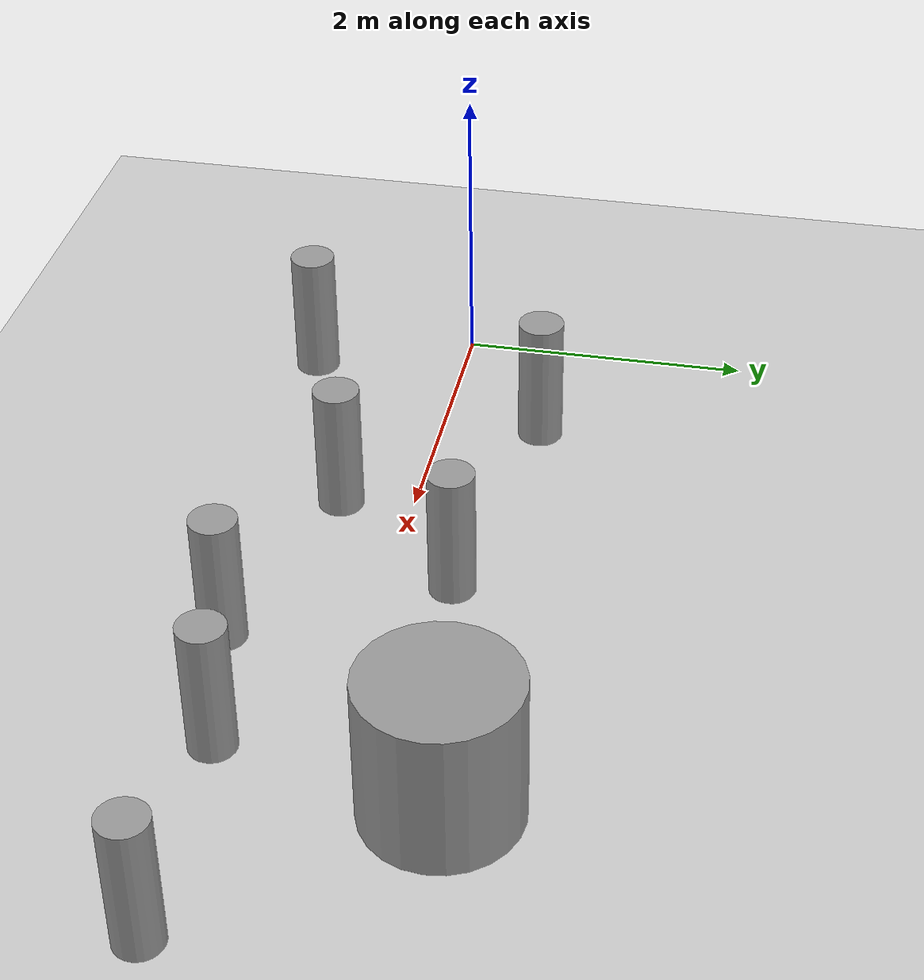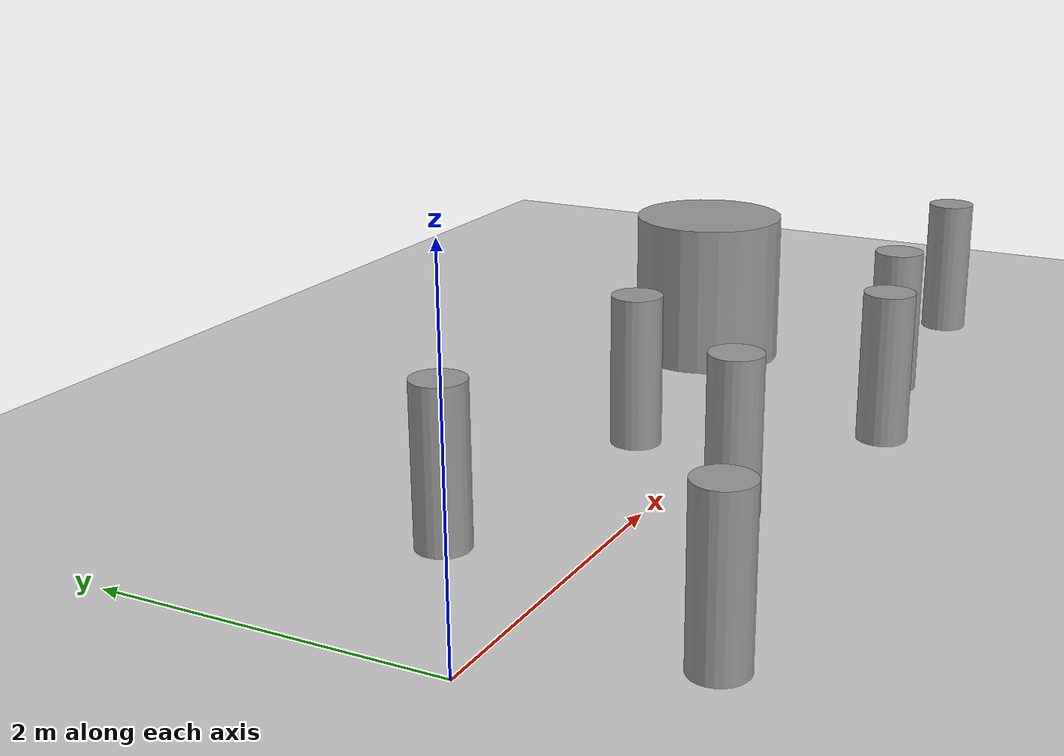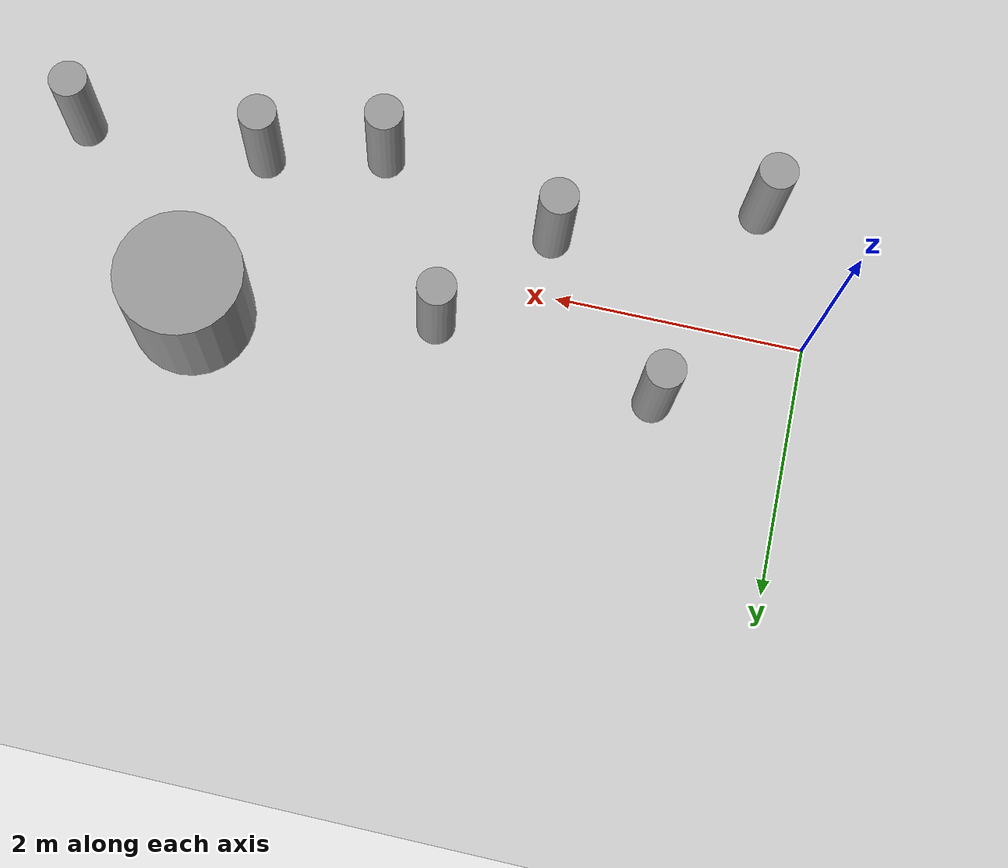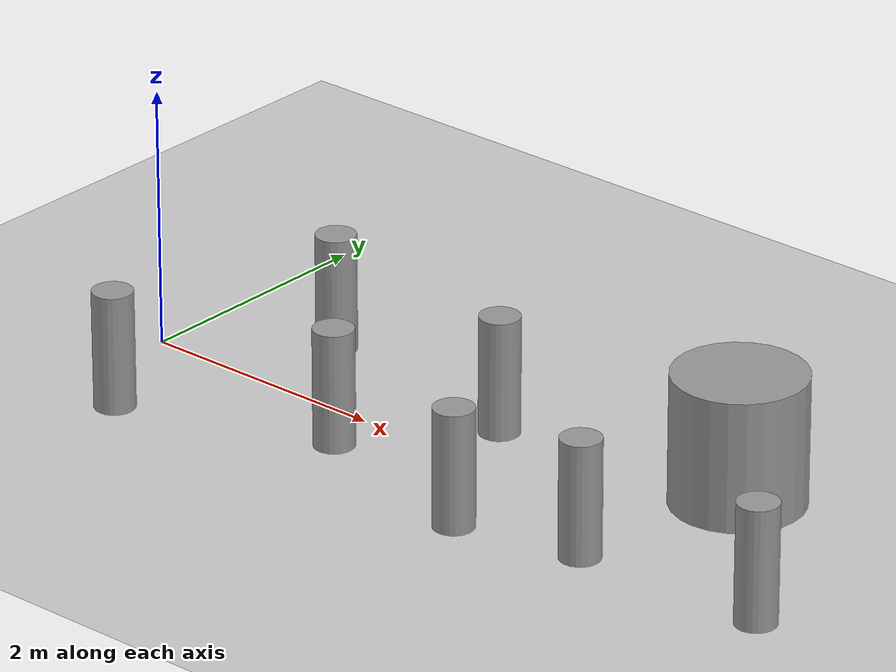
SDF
<sdf version="1.6">
 <world name="default">
  <light name="sun" type="directional">
   <pose>0 0 10 0 -0 0</pose>
   <diffuse>0.8 0.8 0.8 1</diffuse>
   <specular>0.2 0.2 0.2 1</specular>
   <attenuation>
    <range>1000</range>
    <constant>0.9</constant>
    <linear>0.01</linear>
    <quadratic>0.001</quadratic>
   </attenuation>
   <direction>-0.5 0.1 -0.9</direction>
  </light>
  <model name="ground_plane">
   <static>1</static>
   <link name="link">
    <collision name="collision">
     <geometry><plane><normal>0 0 1</normal><size>100 100</size></plane></geometry>
     <surface><friction><ode><mu>100</mu><mu2>50</mu2></ode></friction></surface>
    </collision>
    <visual name="visual">
     <cast_shadows>0</cast_shadows>
     <geometry><plane><normal>0 0 1</normal><size>100 100</size></plane></geometry>
     <material>
      <script><uri>file://media/materials/scripts/gazebo.material</uri><name>Gazebo/Grey</name></script>
     </material>
    </visual>
   </link>
  </model>
  <gravity>0 0 -9.8</gravity>
  <magnetic_field>6e-06 2.3e-05 -4.2e-05</magnetic_field>
  <atmosphere type="adiabatic"/>
  <physics name="default_physics" default="0" type="ode">
   <max_step_size>0.001</max_step_size>
   <real_time_factor>1</real_time_factor>
   <real_time_update_rate>1000</real_time_update_rate>
  </physics>
  <scene><ambient>0.4 0.4 0.4 1</ambient><background>0.7 0.7 0.7 1</background><shadows>1</shadows></scene>
  <audio><device>default</device></audio>
  <spherical_coordinates>
   <surface_model>EARTH_WGS84</surface_model>
   <latitude_deg>0</latitude_deg>
   <longitude_deg>0</longitude_deg>
   <elevation>0</elevation>
   <heading_deg>0</heading_deg>
  </spherical_coordinates>
  <model name="Untitled">
   <link name="link_0">
    <inertial>
     <mass>0.0878339</mass>
     <inertia>
      <ixx>0.00674063</ixx>
      <ixy>0</ixy>
      <ixz>0</ixz>
      <iyy>0.00674063</iyy>
      <iyz>0</iyz>
      <izz>0.00104639</izz>
     </inertia>
    </inertial>
    <visual name="visual">
     <geometry><cylinder><radius>0.154359</radius><length>0.921648</length></cylinder></geometry>
     <material>
      <lighting>1</lighting>
      <script><uri>file://media/materials/scripts/gazebo.material</uri><name>Gazebo/Grey</name></script>
     </material>
    </visual>
    <collision name="collision">
     <geometry><cylinder><radius>0.154359</radius><length>0.921648</length></cylinder></geometry>
     <surface>
      <friction>
       <ode><mu>1</mu><mu2>1</mu2><fdir1>0 0 0</fdir1><slip1>0</slip1><slip2>0</slip2></ode>
       <torsional>
        <coefficient>1</coefficient>
        <patch_radius>0</patch_radius>
        <surface_radius>0</surface_radius>
        <use_patch_radius>1</use_patch_radius>
        <ode><slip>0</slip></ode>
       </torsional>
      </friction>
      <bounce><restitution_coefficient>0</restitution_coefficient><threshold>1e+06</threshold></bounce>
      <contact>
       <collide_without_contact>0</collide_without_contact>
       <collide_without_contact_bitmask>1</collide_without_contact_bitmask>
       <collide_bitmask>1</collide_bitmask>
       <ode>
        <soft_cfm>0</soft_cfm>
        <soft_erp>0.2</soft_erp>
        <kp>1e+13</kp>
        <kd>1</kd>
        <max_vel>0.01</max_vel>
        <min_depth>0</min_depth>
       </ode>
       <bullet>
        <split_impulse>1</split_impulse>
        <split_impulse_penetration_threshold>-0.01</split_impulse_penetration_threshold>
        <soft_cfm>0</soft_cfm>
        <soft_erp>0.2</soft_erp>
        <kp>1e+13</kp>
        <kd>1</kd>
       </bullet>
      </contact>
     </surface>
    </collision>
   </link>
   <static>0</static>
   <pose>6.07981 -0.605288 0.5 0 -0 0</pose>
  </model>
  <model name="Untitled_clone">
   <link name="link_0">
    <inertial>
     <mass>0.0878339</mass>
     <inertia>
      <ixx>0.00674063</ixx>
      <ixy>0</ixy>
      <ixz>0</ixz>
      <iyy>0.00674063</iyy>
      <iyz>0</iyz>
      <izz>0.00104639</izz>
     </inertia>
    </inertial>
    <visual name="visual">
     <geometry><cylinder><radius>0.154359</radius><length>0.921648</length></cylinder></geometry>
     <material>
      <lighting>1</lighting>
      <script><uri>file://media/materials/scripts/gazebo.material</uri><name>Gazebo/Grey</name></script>
     </material>
    </visual>
    <collision name="collision">
     <geometry><cylinder><radius>0.154359</radius><length>0.921648</length></cylinder></geometry>
     <surface>
      <friction>
       <ode><mu>1</mu><mu2>1</mu2><fdir1>0 0 0</fdir1><slip1>0</slip1><slip2>0</slip2></ode>
       <torsional>
        <coefficient>1</coefficient>
        <patch_radius>0</patch_radius>
        <surface_radius>0</surface_radius>
        <use_patch_radius>1</use_patch_radius>
        <ode><slip>0</slip></ode>
       </torsional>
      </friction>
      <bounce><restitution_coefficient>0</restitution_coefficient><threshold>1e+06</threshold></bounce>
      <contact>
       <collide_without_contact>0</collide_without_contact>
       <collide_without_contact_bitmask>1</collide_without_contact_bitmask>
       <collide_bitmask>1</collide_bitmask>
       <ode>
        <soft_cfm>0</soft_cfm>
        <soft_erp>0.2</soft_erp>
        <kp>1e+13</kp>
        <kd>1</kd>
        <max_vel>0.01</max_vel>
        <min_depth>0</min_depth>
       </ode>
       <bullet>
        <split_impulse>1</split_impulse>
        <split_impulse_penetration_threshold>-0.01</split_impulse_penetration_threshold>
        <soft_cfm>0</soft_cfm>
        <soft_erp>0.2</soft_erp>
        <kp>1e+13</kp>
        <kd>1</kd>
       </bullet>
      </contact>
     </surface>
    </collision>
   </link>
   <static>0</static>
   <pose>0.530703 -1.05289 0.5 0 -0 0</pose>
  </model>
  <model name="Untitled_clone_0">
   <link name="link_0">
    <inertial>
     <mass>0.0878339</mass>
     <inertia>
      <ixx>0.00674063</ixx>
      <ixy>0</ixy>
      <ixz>0</ixz>
      <iyy>0.00674063</iyy>
      <iyz>0</iyz>
      <izz>0.00104639</izz>
     </inertia>
    </inertial>
    <visual name="visual">
     <geometry><cylinder><radius>0.154359</radius><length>0.921648</length></cylinder></geometry>
     <material>
      <lighting>1</lighting>
      <script><uri>file://media/materials/scripts/gazebo.material</uri><name>Gazebo/Grey</name></script>
     </material>
    </visual>
    <collision name="collision">
     <geometry><cylinder><radius>0.154359</radius><length>0.921648</length></cylinder></geometry>
     <surface>
      <friction>
       <ode><mu>1</mu><mu2>1</mu2><fdir1>0 0 0</fdir1><slip1>0</slip1><slip2>0</slip2></ode>
       <torsional>
        <coefficient>1</coefficient>
        <patch_radius>0</patch_radius>
        <surface_radius>0</surface_radius>
        <use_patch_radius>1</use_patch_radius>
        <ode><slip>0</slip></ode>
       </torsional>
      </friction>
      <bounce><restitution_coefficient>0</restitution_coefficient><threshold>1e+06</threshold></bounce>
      <contact>
       <collide_without_contact>0</collide_without_contact>
       <collide_without_contact_bitmask>1</collide_without_contact_bitmask>
       <collide_bitmask>1</collide_bitmask>
       <ode>
        <soft_cfm>0</soft_cfm>
        <soft_erp>0.2</soft_erp>
        <kp>1e+13</kp>
        <kd>1</kd>
        <max_vel>0.01</max_vel>
        <min_depth>0</min_depth>
       </ode>
       <bullet>
        <split_impulse>1</split_impulse>
        <split_impulse_penetration_threshold>-0.01</split_impulse_penetration_threshold>
        <soft_cfm>0</soft_cfm>
        <soft_erp>0.2</soft_erp>
        <kp>1e+13</kp>
        <kd>1</kd>
       </bullet>
      </contact>
     </surface>
    </collision>
   </link>
   <static>0</static>
   <pose>1.09378 0.705608 0.5 0 -0 0</pose>
  </model>
  <model name="Untitled_clone_1">
   <link name="link_0">
    <inertial>
     <mass>0.0878339</mass>
     <inertia>
      <ixx>0.00674063</ixx>
      <ixy>0</ixy>
      <ixz>0</ixz>
      <iyy>0.00674063</iyy>
      <iyz>0</iyz>
      <izz>0.00104639</izz>
     </inertia>
    </inertial>
    <visual name="visual">
     <geometry><cylinder><radius>0.154359</radius><length>0.921648</length></cylinder></geometry>
     <material>
      <lighting>1</lighting>
      <script><uri>file://media/materials/scripts/gazebo.material</uri><name>Gazebo/Grey</name></script>
     </material>
    </visual>
    <collision name="collision">
     <geometry><cylinder><radius>0.154359</radius><length>0.921648</length></cylinder></geometry>
     <surface>
      <friction>
       <ode><mu>1</mu><mu2>1</mu2><fdir1>0 0 0</fdir1><slip1>0</slip1><slip2>0</slip2></ode>
       <torsional>
        <coefficient>1</coefficient>
        <patch_radius>0</patch_radius>
        <surface_radius>0</surface_radius>
        <use_patch_radius>1</use_patch_radius>
        <ode><slip>0</slip></ode>
       </torsional>
      </friction>
      <bounce><restitution_coefficient>0</restitution_coefficient><threshold>1e+06</threshold></bounce>
      <contact>
       <collide_without_contact>0</collide_without_contact>
       <collide_without_contact_bitmask>1</collide_without_contact_bitmask>
       <collide_bitmask>1</collide_bitmask>
       <ode>
        <soft_cfm>0</soft_cfm>
        <soft_erp>0.2</soft_erp>
        <kp>1e+13</kp>
        <kd>1</kd>
        <max_vel>0.01</max_vel>
        <min_depth>0</min_depth>
       </ode>
       <bullet>
        <split_impulse>1</split_impulse>
        <split_impulse_penetration_threshold>-0.01</split_impulse_penetration_threshold>
        <soft_cfm>0</soft_cfm>
        <soft_erp>0.2</soft_erp>
        <kp>1e+13</kp>
        <kd>1</kd>
       </bullet>
      </contact>
     </surface>
    </collision>
   </link>
   <static>0</static>
   <pose>2.13482 -0.477651 0.5 0 -0 0</pose>
  </model>
  <model name="Untitled_clone_2">
   <link name="link_0">
    <inertial>
     <mass>0.0878339</mass>
     <inertia>
      <ixx>0.00674063</ixx>
      <ixy>0</ixy>
      <ixz>0</ixz>
      <iyy>0.00674063</iyy>
      <iyz>0</iyz>
      <izz>0.00104639</izz>
     </inertia>
    </inertial>
    <visual name="visual">
     <geometry><cylinder><radius>0.154359</radius><length>0.921648</length></cylinder></geometry>
     <material>
      <lighting>1</lighting>
      <script><uri>file://media/materials/scripts/gazebo.material</uri><name>Gazebo/Grey</name></script>
     </material>
    </visual>
    <collision name="collision">
     <geometry><cylinder><radius>0.154359</radius><length>0.921648</length></cylinder></geometry>
     <surface>
      <friction>
       <ode><mu>1</mu><mu2>1</mu2><fdir1>0 0 0</fdir1><slip1>0</slip1><slip2>0</slip2></ode>
       <torsional>
        <coefficient>1</coefficient>
        <patch_radius>0</patch_radius>
        <surface_radius>0</surface_radius>
        <use_patch_radius>1</use_patch_radius>
        <ode><slip>0</slip></ode>
       </torsional>
      </friction>
      <bounce><restitution_coefficient>0</restitution_coefficient><threshold>1e+06</threshold></bounce>
      <contact>
       <collide_without_contact>0</collide_without_contact>
       <collide_without_contact_bitmask>1</collide_without_contact_bitmask>
       <collide_bitmask>1</collide_bitmask>
       <ode>
        <soft_cfm>0</soft_cfm>
        <soft_erp>0.2</soft_erp>
        <kp>1e+13</kp>
        <kd>1</kd>
        <max_vel>0.01</max_vel>
        <min_depth>0</min_depth>
       </ode>
       <bullet>
        <split_impulse>1</split_impulse>
        <split_impulse_penetration_threshold>-0.01</split_impulse_penetration_threshold>
        <soft_cfm>0</soft_cfm>
        <soft_erp>0.2</soft_erp>
        <kp>1e+13</kp>
        <kd>1</kd>
       </bullet>
      </contact>
     </surface>
    </collision>
   </link>
   <static>0</static>
   <pose>3.60447 -0.870643 0.5 0 -0 0</pose>
  </model>
  <model name="Untitled_clone_3">
   <link name="link_0">
    <inertial>
     <mass>0.0878339</mass>
     <inertia>
      <ixx>0.00674063</ixx>
      <ixy>0</ixy>
      <ixz>0</ixz>
      <iyy>0.00674063</iyy>
      <iyz>0</iyz>
      <izz>0.00104639</izz>
     </inertia>
    </inertial>
    <visual name="visual">
     <geometry><cylinder><radius>0.154359</radius><length>0.921648</length></cylinder></geometry>
     <material>
      <lighting>1</lighting>
      <script><uri>file://media/materials/scripts/gazebo.material</uri><name>Gazebo/Grey</name></script>
     </material>
    </visual>
    <collision name="collision">
     <geometry><cylinder><radius>0.154359</radius><length>0.921648</length></cylinder></geometry>
     <surface>
      <friction>
       <ode><mu>1</mu><mu2>1</mu2><fdir1>0 0 0</fdir1><slip1>0</slip1><slip2>0</slip2></ode>
       <torsional>
        <coefficient>1</coefficient>
        <patch_radius>0</patch_radius>
        <surface_radius>0</surface_radius>
        <use_patch_radius>1</use_patch_radius>
        <ode><slip>0</slip></ode>
       </torsional>
      </friction>
      <bounce><restitution_coefficient>0</restitution_coefficient><threshold>1e+06</threshold></bounce>
      <contact>
       <collide_without_contact>0</collide_without_contact>
       <collide_without_contact_bitmask>1</collide_without_contact_bitmask>
       <collide_bitmask>1</collide_bitmask>
       <ode>
        <soft_cfm>0</soft_cfm>
        <soft_erp>0.2</soft_erp>
        <kp>1e+13</kp>
        <kd>1</kd>
        <max_vel>0.01</max_vel>
        <min_depth>0</min_depth>
       </ode>
       <bullet>
        <split_impulse>1</split_impulse>
        <split_impulse_penetration_threshold>-0.01</split_impulse_penetration_threshold>
        <soft_cfm>0</soft_cfm>
        <soft_erp>0.2</soft_erp>
        <kp>1e+13</kp>
        <kd>1</kd>
       </bullet>
      </contact>
     </surface>
    </collision>
   </link>
   <static>0</static>
   <pose>2.88947 0.44522 0.5 0 -0 0</pose>
  </model>
  <model name="unit_cylinder">
   <pose>4.80608 0.778414 0.5 0 -0 0</pose>
   <link name="link">
    <inertial>
     <mass>1</mass>
     <inertia><ixx>0.145833</ixx><ixy>0</ixy><ixz>0</ixz><iyy>0.145833</iyy><iyz>0</iyz><izz>0.125</izz></inertia>
    </inertial>
    <collision name="collision">
     <geometry><cylinder><radius>0.5</radius><length>1</length></cylinder></geometry>
    </collision>
    <visual name="visual">
     <geometry><cylinder><radius>0.5</radius><length>1</length></cylinder></geometry>
     <material>
      <script><name>Gazebo/Grey</name><uri>file://media/materials/scripts/gazebo.material</uri></script>
     </material>
    </visual>
   </link>
  </model>
  <model name="Untitled_clone_4">
   <link name="link_0">
    <inertial>
     <mass>0.0878339</mass>
     <inertia>
      <ixx>0.00674063</ixx>
      <ixy>0</ixy>
      <ixz>0</ixz>
      <iyy>0.00674063</iyy>
      <iyz>0</iyz>
      <izz>0.00104639</izz>
     </inertia>
    </inertial>
    <visual name="visual">
     <geometry><cylinder><radius>0.154359</radius><length>0.921648</length></cylinder></geometry>
     <material>
      <lighting>1</lighting>
      <script><uri>file://media/materials/scripts/gazebo.material</uri><name>Gazebo/Grey</name></script>
     </material>
    </visual>
    <collision name="collision">
     <geometry><cylinder><radius>0.154359</radius><length>0.921648</length></cylinder></geometry>
     <surface>
      <friction>
       <ode><mu>1</mu><mu2>1</mu2><fdir1>0 0 0</fdir1><slip1>0</slip1><slip2>0</slip2></ode>
       <torsional>
        <coefficient>1</coefficient>
        <patch_radius>0</patch_radius>
        <surface_radius>0</surface_radius>
        <use_patch_radius>1</use_patch_radius>
        <ode><slip>0</slip></ode>
       </torsional>
      </friction>
      <bounce><restitution_coefficient>0</restitution_coefficient><threshold>1e+06</threshold></bounce>
      <contact>
       <collide_without_contact>0</collide_without_contact>
       <collide_without_contact_bitmask>1</collide_without_contact_bitmask>
       <collide_bitmask>1</collide_bitmask>
       <ode>
        <soft_cfm>0</soft_cfm>
        <soft_erp>0.2</soft_erp>
        <kp>1e+13</kp>
        <kd>1</kd>
        <max_vel>0.01</max_vel>
        <min_depth>0</min_depth>
       </ode>
       <bullet>
        <split_impulse>1</split_impulse>
        <split_impulse_penetration_threshold>-0.01</split_impulse_penetration_threshold>
        <soft_cfm>0</soft_cfm>
        <soft_erp>0.2</soft_erp>
        <kp>1e+13</kp>
        <kd>1</kd>
       </bullet>
      </contact>
     </surface>
    </collision>
   </link>
   <static>0</static>
   <pose>4.56533 -0.651716 0.5 0 -0 0</pose>
  </model>
 </world>
</sdf>
